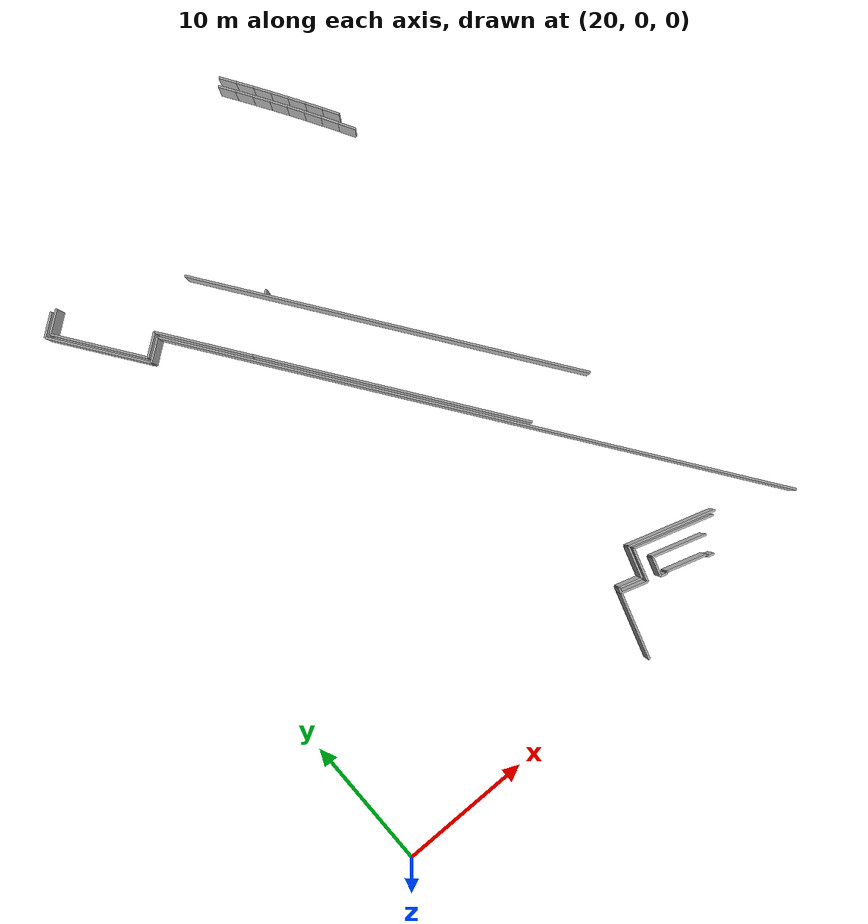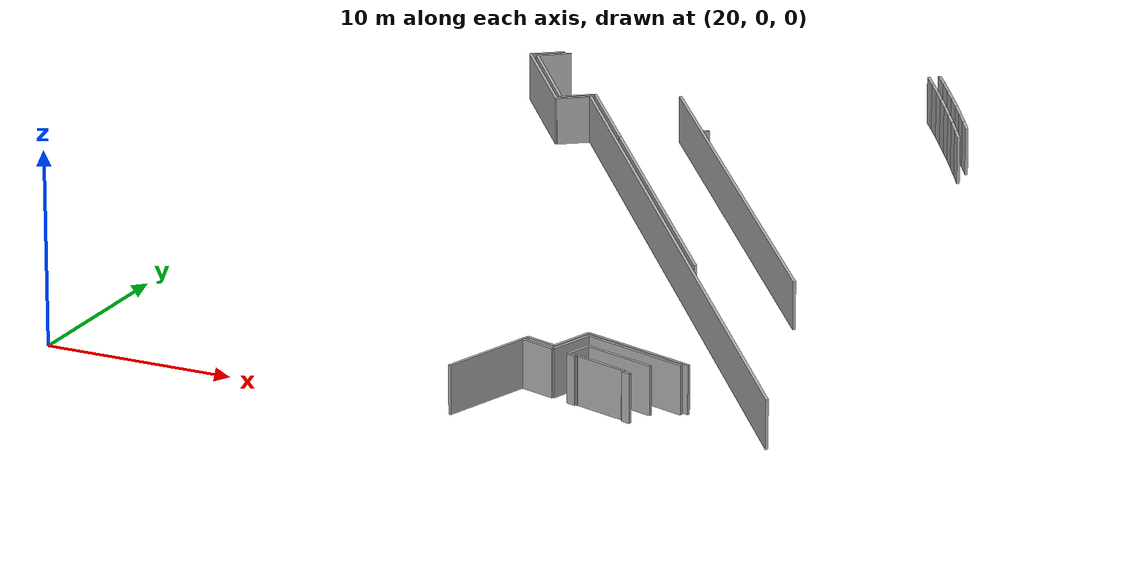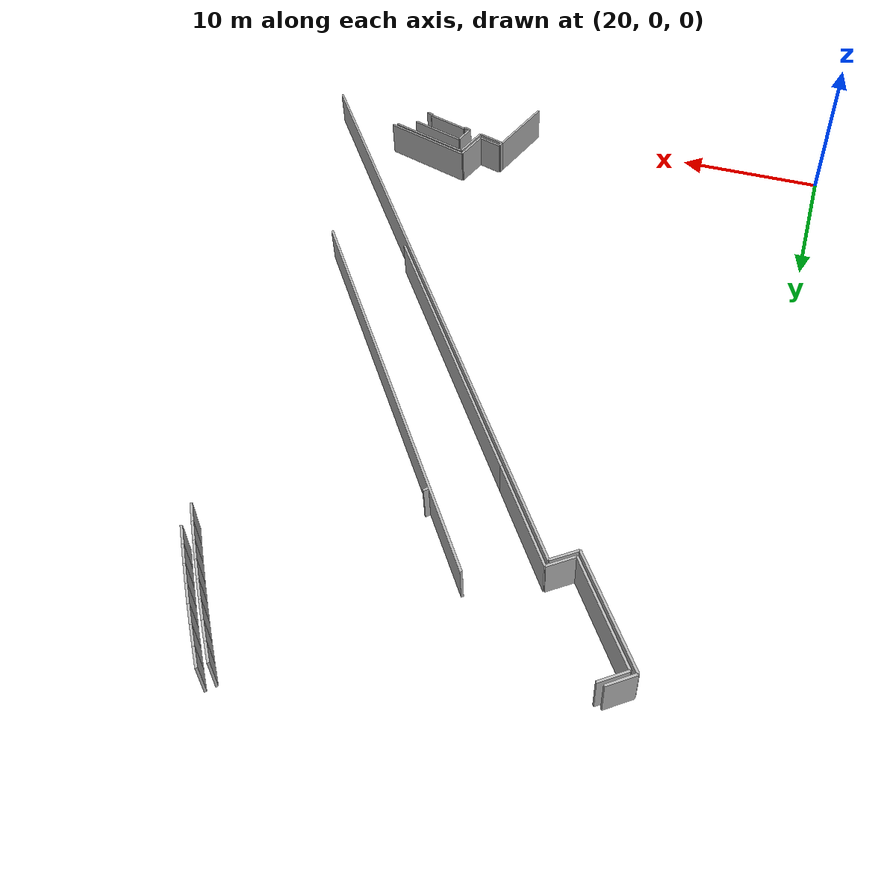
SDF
<?xml version="1.0" ?>
<sdf version="1.6">
  <model name="sps_0604">
    <pose frame="">0 0 0 0 -0 0</pose>
    <static>1</static>
    <self_collide>0</self_collide>
    <allow_auto_disable>0</allow_auto_disable>
    <link name="Wall131">
      <kinematic>0</kinematic>
      <gravity>1</gravity>
      <self_collide>0</self_collide>
      <collision name="collision">
        <geometry>
          <box>
            <size>0.381864 0.15 2.5</size>
          </box>
        </geometry>
        <pose frame="">0 0 0 0 -0 0</pose>
      </collision>
      <visual name="visual">
        <geometry>
          <box>
            <size>0.381864 0.15 2.5</size>
          </box>
        </geometry>
        <pose frame="">0 0 0 0 -0 0</pose>
        <cast_shadows>1</cast_shadows>
        <transparency>0.0</transparency>
      </visual>
      <pose frame="">43.2958 5.05962 1.25 0 -0 1.26542</pose>
    </link>
    <link name="Wall141">
      <kinematic>0</kinematic>
      <gravity>1</gravity>
      <self_collide>0</self_collide>
      <collision name="collision">
        <geometry>
          <box>
            <size>29.0168 0.15 2.5</size>
          </box>
        </geometry>
        <pose frame="">0 0 0 0 -0 0</pose>
      </collision>
      <visual name="visual">
        <geometry>
          <box>
            <size>29.0168 0.15 2.5</size>
          </box>
        </geometry>
        <pose frame="">0 0 0 0 -0 0</pose>
        <cast_shadows>1</cast_shadows>
        <transparency>0.0</transparency>
      </visual>
      <pose frame="">43.0265 29.6094 1.25 0 -0 2.2016</pose>
    </link>
    <link name="Wall519">
      <kinematic>0</kinematic>
      <gravity>1</gravity>
      <self_collide>0</self_collide>
      <collision name="collision">
        <geometry>
          <box>
            <size>0.350072 0.15 2.5</size>
          </box>
        </geometry>
        <pose frame="">0 0 0 0 -0 0</pose>
      </collision>
      <visual name="visual">
        <geometry>
          <box>
            <size>0.350072 0.15 2.5</size>
          </box>
        </geometry>
        <pose frame="">0 0 0 0 -0 0</pose>
        <cast_shadows>1</cast_shadows>
        <transparency>0.0</transparency>
      </visual>
      <pose frame="">38.0371 36.8069 1.25 0 0 -2.42158</pose>
    </link>
    <link name="Wall858">
      <kinematic>0</kinematic>
      <gravity>1</gravity>
      <self_collide>0</self_collide>
      <collision name="collision">
        <geometry>
          <box>
            <size>4.02983 0.15 2.5</size>
          </box>
        </geometry>
        <pose frame="">0 0 0 0 -0 0</pose>
      </collision>
      <visual name="visual">
        <geometry>
          <box>
            <size>4.02983 0.15 2.5</size>
          </box>
        </geometry>
        <pose frame="">0 0 0 0 -0 0</pose>
        <cast_shadows>1</cast_shadows>
        <transparency>0.0</transparency>
      </visual>
      <pose frame="">48.4295 4.75169 1.25 0 -0 2.83672</pose>
    </link>
    <link name="Wall1262">
      <kinematic>0</kinematic>
      <gravity>1</gravity>
      <self_collide>0</self_collide>
      <collision name="collision">
        <geometry>
          <box>
            <size>1.73522 0.15 2.5</size>
          </box>
        </geometry>
        <pose frame="">0 0 0 0 -0 0</pose>
      </collision>
      <visual name="visual">
        <geometry>
          <box>
            <size>1.73522 0.15 2.5</size>
          </box>
        </geometry>
        <pose frame="">0 0 0 0 -0 0</pose>
        <cast_shadows>1</cast_shadows>
        <transparency>0.0</transparency>
      </visual>
      <pose frame="">44.1808 4.98131 1.25 0 -0 2.83675</pose>
    </link>
    <link name="Wall1263">
      <kinematic>0</kinematic>
      <gravity>1</gravity>
      <self_collide>0</self_collide>
      <collision name="collision">
        <geometry>
          <box>
            <size>0.508074 0.15 2.5</size>
          </box>
        </geometry>
        <pose frame="">0 0 0 0 -0 0</pose>
      </collision>
      <visual name="visual">
        <geometry>
          <box>
            <size>0.508074 0.15 2.5</size>
          </box>
        </geometry>
        <pose frame="">0 0 0 0 -0 0</pose>
        <cast_shadows>1</cast_shadows>
        <transparency>0.0</transparency>
      </visual>
      <pose frame="">46.318 3.9084 1.25 0 0 -0.305035</pose>
    </link>
    <link name="Wall1264">
      <kinematic>0</kinematic>
      <gravity>1</gravity>
      <self_collide>0</self_collide>
      <collision name="collision">
        <geometry>
          <box>
            <size>0.123061 0.15 2.5</size>
          </box>
        </geometry>
        <pose frame="">0 0 0 0 -0 0</pose>
      </collision>
      <visual name="visual">
        <geometry>
          <box>
            <size>0.123061 0.15 2.5</size>
          </box>
        </geometry>
        <pose frame="">0 0 0 0 -0 0</pose>
        <cast_shadows>1</cast_shadows>
        <transparency>0.0</transparency>
      </visual>
      <pose frame="">46.5788 3.89079 1.25 0 0 -1.87608</pose>
    </link>
    <link name="Wall1267">
      <kinematic>0</kinematic>
      <gravity>1</gravity>
      <self_collide>0</self_collide>
      <collision name="collision">
        <geometry>
          <box>
            <size>0.123079 0.15 2.5</size>
          </box>
        </geometry>
        <pose frame="">0 0 0 0 -0 0</pose>
      </collision>
      <visual name="visual">
        <geometry>
          <box>
            <size>0.123079 0.15 2.5</size>
          </box>
        </geometry>
        <pose frame="">0 0 0 0 -0 0</pose>
        <cast_shadows>1</cast_shadows>
        <transparency>0.0</transparency>
      </visual>
      <pose frame="">49.4722 2.98039 1.25 0 -0 1.26504</pose>
    </link>
    <link name="Wall1268">
      <kinematic>0</kinematic>
      <gravity>1</gravity>
      <self_collide>0</self_collide>
      <collision name="collision">
        <geometry>
          <box>
            <size>3.03328 0.15 2.5</size>
          </box>
        </geometry>
        <pose frame="">0 0 0 0 -0 0</pose>
      </collision>
      <visual name="visual">
        <geometry>
          <box>
            <size>3.03328 0.15 2.5</size>
          </box>
        </geometry>
        <pose frame="">0 0 0 0 -0 0</pose>
        <cast_shadows>1</cast_shadows>
        <transparency>0.0</transparency>
      </visual>
      <pose frame="">48.044 3.49428 1.25 0 -0 2.83676</pose>
    </link>
    <link name="Wall1271">
      <kinematic>0</kinematic>
      <gravity>1</gravity>
      <self_collide>0</self_collide>
      <collision name="collision">
        <geometry>
          <box>
            <size>19.9923 0.15 2.5</size>
          </box>
        </geometry>
        <pose frame="">0 0 0 0 -0 0</pose>
      </collision>
      <visual name="visual">
        <geometry>
          <box>
            <size>19.9923 0.15 2.5</size>
          </box>
        </geometry>
        <pose frame="">0 0 0 0 -0 0</pose>
        <cast_shadows>1</cast_shadows>
        <transparency>0.0</transparency>
      </visual>
      <pose frame="">40.3652 25.9655 1.25 0 -0 2.20161</pose>
    </link>
    <link name="Wall1272">
      <kinematic>0</kinematic>
      <gravity>1</gravity>
      <self_collide>0</self_collide>
      <collision name="collision">
        <geometry>
          <box>
            <size>7.02578 0.15 2.5</size>
          </box>
        </geometry>
        <pose frame="">0 0 0 0 -0 0</pose>
      </collision>
      <visual name="visual">
        <geometry>
          <box>
            <size>7.02578 0.15 2.5</size>
          </box>
        </geometry>
        <pose frame="">0 0 0 0 -0 0</pose>
        <cast_shadows>1</cast_shadows>
        <transparency>0.0</transparency>
      </visual>
      <pose frame="">32.3975 36.8747 1.25 0 -0 2.20161</pose>
    </link>
    <link name="Wall1551">
      <kinematic>0</kinematic>
      <gravity>1</gravity>
      <self_collide>0</self_collide>
      <collision name="collision">
        <geometry>
          <box>
            <size>2.37616 0.15 2.5</size>
          </box>
        </geometry>
        <pose frame="">0 0 0 0 -0 0</pose>
      </collision>
      <visual name="visual">
        <geometry>
          <box>
            <size>2.37616 0.15 2.5</size>
          </box>
        </geometry>
        <pose frame="">0 0 0 0 -0 0</pose>
        <cast_shadows>1</cast_shadows>
        <transparency>0.0</transparency>
      </visual>
      <pose frame="">45.365 5.8542 1.25 0 0 -1.87564</pose>
    </link>
    <link name="Wall1552">
      <kinematic>0</kinematic>
      <gravity>1</gravity>
      <self_collide>0</self_collide>
      <collision name="collision">
        <geometry>
          <box>
            <size>1.43819 0.15 2.5</size>
          </box>
        </geometry>
        <pose frame="">0 0 0 0 -0 0</pose>
      </collision>
      <visual name="visual">
        <geometry>
          <box>
            <size>1.43819 0.15 2.5</size>
          </box>
        </geometry>
        <pose frame="">0 0 0 0 -0 0</pose>
        <cast_shadows>1</cast_shadows>
        <transparency>0.0</transparency>
      </visual>
      <pose frame="">46.2916 4.67061 1.25 0 0 -1.87576</pose>
    </link>
    <link name="Wall1553">
      <kinematic>0</kinematic>
      <gravity>1</gravity>
      <self_collide>0</self_collide>
      <collision name="collision">
        <geometry>
          <box>
            <size>0.488649 0.15 2.5</size>
          </box>
        </geometry>
        <pose frame="">0 0 0 0 -0 0</pose>
      </collision>
      <visual name="visual">
        <geometry>
          <box>
            <size>0.488649 0.15 2.5</size>
          </box>
        </geometry>
        <pose frame="">0 0 0 0 -0 0</pose>
        <cast_shadows>1</cast_shadows>
        <transparency>0.0</transparency>
      </visual>
      <pose frame="">49.6866 2.84819 1.25 0 0 -0.305634</pose>
    </link>
    <link name="Wall2608">
      <kinematic>0</kinematic>
      <gravity>1</gravity>
      <self_collide>0</self_collide>
      <collision name="collision">
        <geometry>
          <box>
            <size>6.50424 0.15 2.5</size>
          </box>
        </geometry>
        <pose frame="">0 0 0 0 -0 0</pose>
      </collision>
      <visual name="visual">
        <geometry>
          <box>
            <size>6.50424 0.15 2.5</size>
          </box>
        </geometry>
        <pose frame="">0 0 0 0 -0 0</pose>
        <cast_shadows>1</cast_shadows>
        <transparency>0.0</transparency>
      </visual>
      <pose frame="">48.8238 6.01118 1.25 0 -0 2.83668</pose>
    </link>
    <link name="Wall7039">
      <kinematic>0</kinematic>
      <gravity>1</gravity>
      <self_collide>0</self_collide>
      <collision name="collision">
        <geometry>
          <box>
            <size>1.25435 0.15 2.5</size>
          </box>
        </geometry>
        <pose frame="">0 0 0 0 -0 0</pose>
      </collision>
      <visual name="visual">
        <geometry>
          <box>
            <size>1.25435 0.15 2.5</size>
          </box>
        </geometry>
        <pose frame="">0 0 0 0 -0 0</pose>
        <cast_shadows>1</cast_shadows>
        <transparency>0.0</transparency>
      </visual>
      <pose frame="">49.6578 43.4734 1.25 0 -0 2.11278</pose>
    </link>
    <link name="Wall7040">
      <kinematic>0</kinematic>
      <gravity>1</gravity>
      <self_collide>0</self_collide>
      <collision name="collision">
        <geometry>
          <box>
            <size>1.25424 0.15 2.5</size>
          </box>
        </geometry>
        <pose frame="">0 0 0 0 -0 0</pose>
      </collision>
      <visual name="visual">
        <geometry>
          <box>
            <size>1.25424 0.15 2.5</size>
          </box>
        </geometry>
        <pose frame="">0 0 0 0 -0 0</pose>
        <cast_shadows>1</cast_shadows>
        <transparency>0.0</transparency>
      </visual>
      <pose frame="">49.0061 44.5451 1.25 0 -0 2.12154</pose>
    </link>
    <link name="Wall7041">
      <kinematic>0</kinematic>
      <gravity>1</gravity>
      <self_collide>0</self_collide>
      <collision name="collision">
        <geometry>
          <box>
            <size>1.2543 0.15 2.5</size>
          </box>
        </geometry>
        <pose frame="">0 0 0 0 -0 0</pose>
      </collision>
      <visual name="visual">
        <geometry>
          <box>
            <size>1.2543 0.15 2.5</size>
          </box>
        </geometry>
        <pose frame="">0 0 0 0 -0 0</pose>
        <cast_shadows>1</cast_shadows>
        <transparency>0.0</transparency>
      </visual>
      <pose frame="">48.345 45.611 1.25 0 -0 2.13039</pose>
    </link>
    <link name="Wall7042">
      <kinematic>0</kinematic>
      <gravity>1</gravity>
      <self_collide>0</self_collide>
      <collision name="collision">
        <geometry>
          <box>
            <size>1.25424 0.15 2.5</size>
          </box>
        </geometry>
        <pose frame="">0 0 0 0 -0 0</pose>
      </collision>
      <visual name="visual">
        <geometry>
          <box>
            <size>1.25424 0.15 2.5</size>
          </box>
        </geometry>
        <pose frame="">0 0 0 0 -0 0</pose>
        <cast_shadows>1</cast_shadows>
        <transparency>0.0</transparency>
      </visual>
      <pose frame="">47.6745 46.671 1.25 0 -0 2.13923</pose>
    </link>
    <link name="Wall7043">
      <kinematic>0</kinematic>
      <gravity>1</gravity>
      <self_collide>0</self_collide>
      <collision name="collision">
        <geometry>
          <box>
            <size>1.2544 0.15 2.5</size>
          </box>
        </geometry>
        <pose frame="">0 0 0 0 -0 0</pose>
      </collision>
      <visual name="visual">
        <geometry>
          <box>
            <size>1.2544 0.15 2.5</size>
          </box>
        </geometry>
        <pose frame="">0 0 0 0 -0 0</pose>
        <cast_shadows>1</cast_shadows>
        <transparency>0.0</transparency>
      </visual>
      <pose frame="">46.9947 47.7251 1.25 0 -0 2.14795</pose>
    </link>
    <link name="Wall7044">
      <kinematic>0</kinematic>
      <gravity>1</gravity>
      <self_collide>0</self_collide>
      <collision name="collision">
        <geometry>
          <box>
            <size>1.25419 0.15 2.5</size>
          </box>
        </geometry>
        <pose frame="">0 0 0 0 -0 0</pose>
      </collision>
      <visual name="visual">
        <geometry>
          <box>
            <size>1.25419 0.15 2.5</size>
          </box>
        </geometry>
        <pose frame="">0 0 0 0 -0 0</pose>
        <cast_shadows>1</cast_shadows>
        <transparency>0.0</transparency>
      </visual>
      <pose frame="">46.3057 48.7732 1.25 0 -0 2.15673</pose>
    </link>
    <link name="Wall7045">
      <kinematic>0</kinematic>
      <gravity>1</gravity>
      <self_collide>0</self_collide>
      <collision name="collision">
        <geometry>
          <box>
            <size>1.25423 0.15 2.5</size>
          </box>
        </geometry>
        <pose frame="">0 0 0 0 -0 0</pose>
      </collision>
      <visual name="visual">
        <geometry>
          <box>
            <size>1.25423 0.15 2.5</size>
          </box>
        </geometry>
        <pose frame="">0 0 0 0 -0 0</pose>
        <cast_shadows>1</cast_shadows>
        <transparency>0.0</transparency>
      </visual>
      <pose frame="">45.6075 49.8151 1.25 0 -0 2.16561</pose>
    </link>
    <link name="Wall7156">
      <kinematic>0</kinematic>
      <gravity>1</gravity>
      <self_collide>0</self_collide>
      <collision name="collision">
        <geometry>
          <box>
            <size>6.00019 0.15 2.5</size>
          </box>
        </geometry>
        <pose frame="">0 0 0 0 -0 0</pose>
      </collision>
      <visual name="visual">
        <geometry>
          <box>
            <size>6.00019 0.15 2.5</size>
          </box>
        </geometry>
        <pose frame="">0 0 0 0 -0 0</pose>
        <cast_shadows>1</cast_shadows>
        <transparency>0.0</transparency>
      </visual>
      <pose frame="">48.7584 5.76128 1.25 0 -0 2.8367</pose>
    </link>
    <link name="Wall7157">
      <kinematic>0</kinematic>
      <gravity>1</gravity>
      <self_collide>0</self_collide>
      <collision name="collision">
        <geometry>
          <box>
            <size>2.50003 0.15 2.5</size>
          </box>
        </geometry>
        <pose frame="">0 0 0 0 -0 0</pose>
      </collision>
      <visual name="visual">
        <geometry>
          <box>
            <size>2.50003 0.15 2.5</size>
          </box>
        </geometry>
        <pose frame="">0 0 0 0 -0 0</pose>
        <cast_shadows>1</cast_shadows>
        <transparency>0.0</transparency>
      </visual>
      <pose frame="">45.5214 5.4695 1.25 0 0 -1.87564</pose>
    </link>
    <link name="Wall7158">
      <kinematic>0</kinematic>
      <gravity>1</gravity>
      <self_collide>0</self_collide>
      <collision name="collision">
        <geometry>
          <box>
            <size>2.00008 0.15 2.5</size>
          </box>
        </geometry>
        <pose frame="">0 0 0 0 -0 0</pose>
      </collision>
      <visual name="visual">
        <geometry>
          <box>
            <size>2.00008 0.15 2.5</size>
          </box>
        </geometry>
        <pose frame="">0 0 0 0 -0 0</pose>
        <cast_shadows>1</cast_shadows>
        <transparency>0.0</transparency>
      </visual>
      <pose frame="">44.1923 4.57732 1.25 0 -0 2.8367</pose>
    </link>
    <link name="Wall7159">
      <kinematic>0</kinematic>
      <gravity>1</gravity>
      <self_collide>0</self_collide>
      <collision name="collision">
        <geometry>
          <box>
            <size>5.00002 0.15 2.5</size>
          </box>
        </geometry>
        <pose frame="">0 0 0 0 -0 0</pose>
      </collision>
      <visual name="visual">
        <geometry>
          <box>
            <size>5.00002 0.15 2.5</size>
          </box>
        </geometry>
        <pose frame="">0 0 0 0 -0 0</pose>
        <cast_shadows>1</cast_shadows>
        <transparency>0.0</transparency>
      </visual>
      <pose frame="">42.4879 2.49281 1.25 0 0 -1.87569</pose>
    </link>
    <link name="Wall16788">
      <kinematic>0</kinematic>
      <gravity>1</gravity>
      <self_collide>0</self_collide>
      <collision name="collision">
        <geometry>
          <box>
            <size>1.83276 0.15 2.5</size>
          </box>
        </geometry>
        <pose frame="">0 0 0 0 -0 0</pose>
      </collision>
      <visual name="visual">
        <geometry>
          <box>
            <size>1.83276 0.15 2.5</size>
          </box>
        </geometry>
        <pose frame="">0 0 0 0 -0 0</pose>
        <cast_shadows>1</cast_shadows>
        <transparency>0.0</transparency>
      </visual>
      <pose frame="">29.5857 39.1708 1.25 0 0 -2.51072</pose>
    </link>
    <link name="Wall16789">
      <kinematic>0</kinematic>
      <gravity>1</gravity>
      <self_collide>0</self_collide>
      <collision name="collision">
        <geometry>
          <box>
            <size>7.00003 0.15 2.5</size>
          </box>
        </geometry>
        <pose frame="">0 0 0 0 -0 0</pose>
      </collision>
      <visual name="visual">
        <geometry>
          <box>
            <size>7.00003 0.15 2.5</size>
          </box>
        </geometry>
        <pose frame="">0 0 0 0 -0 0</pose>
        <cast_shadows>1</cast_shadows>
        <transparency>0.0</transparency>
      </visual>
      <pose frame="">26.7815 41.4568 1.25 0 -0 2.20157</pose>
    </link>
    <link name="Wall16790">
      <kinematic>0</kinematic>
      <gravity>1</gravity>
      <self_collide>0</self_collide>
      <collision name="collision">
        <geometry>
          <box>
            <size>1.83232 0.15 2.5</size>
          </box>
        </geometry>
        <pose frame="">0 0 0 0 -0 0</pose>
      </collision>
      <visual name="visual">
        <geometry>
          <box>
            <size>1.83232 0.15 2.5</size>
          </box>
        </geometry>
        <pose frame="">0 0 0 0 -0 0</pose>
        <cast_shadows>1</cast_shadows>
        <transparency>0.0</transparency>
      </visual>
      <pose frame="">25.4571 44.8237 1.25 0 -0 0.630883</pose>
    </link>
    <link name="Wall19348">
      <kinematic>0</kinematic>
      <gravity>1</gravity>
      <self_collide>0</self_collide>
      <collision name="collision">
        <geometry>
          <box>
            <size>1.25225 0.15 2.5</size>
          </box>
        </geometry>
        <pose frame="">0 0 0 0 -0 0</pose>
      </collision>
      <visual name="visual">
        <geometry>
          <box>
            <size>1.25225 0.15 2.5</size>
          </box>
        </geometry>
        <pose frame="">0 0 0 0 -0 0</pose>
        <cast_shadows>1</cast_shadows>
        <transparency>0.0</transparency>
      </visual>
      <pose frame="">49.8497 41.9792 1.25 0 -0 2.10312</pose>
    </link>
    <link name="Wall19349">
      <kinematic>0</kinematic>
      <gravity>1</gravity>
      <self_collide>0</self_collide>
      <collision name="collision">
        <geometry>
          <box>
            <size>1.25211 0.15 2.5</size>
          </box>
        </geometry>
        <pose frame="">0 0 0 0 -0 0</pose>
      </collision>
      <visual name="visual">
        <geometry>
          <box>
            <size>1.25211 0.15 2.5</size>
          </box>
        </geometry>
        <pose frame="">0 0 0 0 -0 0</pose>
        <cast_shadows>1</cast_shadows>
        <transparency>0.0</transparency>
      </visual>
      <pose frame="">49.2094 43.0553 1.25 0 -0 2.11198</pose>
    </link>
    <link name="Wall19350">
      <kinematic>0</kinematic>
      <gravity>1</gravity>
      <self_collide>0</self_collide>
      <collision name="collision">
        <geometry>
          <box>
            <size>1.25223 0.15 2.5</size>
          </box>
        </geometry>
        <pose frame="">0 0 0 0 -0 0</pose>
      </collision>
      <visual name="visual">
        <geometry>
          <box>
            <size>1.25223 0.15 2.5</size>
          </box>
        </geometry>
        <pose frame="">0 0 0 0 -0 0</pose>
        <cast_shadows>1</cast_shadows>
        <transparency>0.0</transparency>
      </visual>
      <pose frame="">48.5597 44.1257 1.25 0 -0 2.1207</pose>
    </link>
    <link name="Wall19351">
      <kinematic>0</kinematic>
      <gravity>1</gravity>
      <self_collide>0</self_collide>
      <collision name="collision">
        <geometry>
          <box>
            <size>1.2522 0.15 2.5</size>
          </box>
        </geometry>
        <pose frame="">0 0 0 0 -0 0</pose>
      </collision>
      <visual name="visual">
        <geometry>
          <box>
            <size>1.2522 0.15 2.5</size>
          </box>
        </geometry>
        <pose frame="">0 0 0 0 -0 0</pose>
        <cast_shadows>1</cast_shadows>
        <transparency>0.0</transparency>
      </visual>
      <pose frame="">47.9005 45.1904 1.25 0 -0 2.12954</pose>
    </link>
    <link name="Wall19352">
      <kinematic>0</kinematic>
      <gravity>1</gravity>
      <self_collide>0</self_collide>
      <collision name="collision">
        <geometry>
          <box>
            <size>1.25224 0.15 2.5</size>
          </box>
        </geometry>
        <pose frame="">0 0 0 0 -0 0</pose>
      </collision>
      <visual name="visual">
        <geometry>
          <box>
            <size>1.25224 0.15 2.5</size>
          </box>
        </geometry>
        <pose frame="">0 0 0 0 -0 0</pose>
        <cast_shadows>1</cast_shadows>
        <transparency>0.0</transparency>
      </visual>
      <pose frame="">47.2321 46.2493 1.25 0 -0 2.13817</pose>
    </link>
    <link name="Wall19353">
      <kinematic>0</kinematic>
      <gravity>1</gravity>
      <self_collide>0</self_collide>
      <collision name="collision">
        <geometry>
          <box>
            <size>1.25224 0.15 2.5</size>
          </box>
        </geometry>
        <pose frame="">0 0 0 0 -0 0</pose>
      </collision>
      <visual name="visual">
        <geometry>
          <box>
            <size>1.25224 0.15 2.5</size>
          </box>
        </geometry>
        <pose frame="">0 0 0 0 -0 0</pose>
        <cast_shadows>1</cast_shadows>
        <transparency>0.0</transparency>
      </visual>
      <pose frame="">46.5545 47.3023 1.25 0 -0 2.14709</pose>
    </link>
    <link name="Wall19354">
      <kinematic>0</kinematic>
      <gravity>1</gravity>
      <self_collide>0</self_collide>
      <collision name="collision">
        <geometry>
          <box>
            <size>1.25218 0.15 2.5</size>
          </box>
        </geometry>
        <pose frame="">0 0 0 0 -0 0</pose>
      </collision>
      <visual name="visual">
        <geometry>
          <box>
            <size>1.25218 0.15 2.5</size>
          </box>
        </geometry>
        <pose frame="">0 0 0 0 -0 0</pose>
        <cast_shadows>1</cast_shadows>
        <transparency>0.0</transparency>
      </visual>
      <pose frame="">45.8675 48.3492 1.25 0 -0 2.15599</pose>
    </link>
    <link name="Wall19355">
      <kinematic>0</kinematic>
      <gravity>1</gravity>
      <self_collide>0</self_collide>
      <collision name="collision">
        <geometry>
          <box>
            <size>1.2522 0.15 2.5</size>
          </box>
        </geometry>
        <pose frame="">0 0 0 0 -0 0</pose>
      </collision>
      <visual name="visual">
        <geometry>
          <box>
            <size>1.2522 0.15 2.5</size>
          </box>
        </geometry>
        <pose frame="">0 0 0 0 -0 0</pose>
        <cast_shadows>1</cast_shadows>
        <transparency>0.0</transparency>
      </visual>
      <pose frame="">45.1711 49.3899 1.25 0 -0 2.16495</pose>
    </link>
    <link name="Wall25195">
      <kinematic>0</kinematic>
      <gravity>1</gravity>
      <self_collide>0</self_collide>
      <collision name="collision">
        <geometry>
          <box>
            <size>1.83279 0.15 2.5</size>
          </box>
        </geometry>
        <pose frame="">0 0 0 0 -0 0</pose>
      </collision>
      <visual name="visual">
        <geometry>
          <box>
            <size>1.83279 0.15 2.5</size>
          </box>
        </geometry>
        <pose frame="">0 0 0 0 -0 0</pose>
        <cast_shadows>1</cast_shadows>
        <transparency>0.0</transparency>
      </visual>
      <pose frame="">25.0362 44.8904 1.25 0 0 -2.50834</pose>
    </link>
    <link name="Wall25196">
      <kinematic>0</kinematic>
      <gravity>1</gravity>
      <self_collide>0</self_collide>
      <collision name="collision">
        <geometry>
          <box>
            <size>7.59996 0.15 2.5</size>
          </box>
        </geometry>
        <pose frame="">0 0 0 0 -0 0</pose>
      </collision>
      <visual name="visual">
        <geometry>
          <box>
            <size>7.59996 0.15 2.5</size>
          </box>
        </geometry>
        <pose frame="">0 0 0 0 -0 0</pose>
        <cast_shadows>1</cast_shadows>
        <transparency>0.0</transparency>
      </visual>
      <pose frame="">26.5464 41.2851 1.25 0 0 -0.937453</pose>
    </link>
    <link name="Wall25197">
      <kinematic>0</kinematic>
      <gravity>1</gravity>
      <self_collide>0</self_collide>
      <collision name="collision">
        <geometry>
          <box>
            <size>1.81378 0.15 2.5</size>
          </box>
        </geometry>
        <pose frame="">0 0 0 0 -0 0</pose>
      </collision>
      <visual name="visual">
        <geometry>
          <box>
            <size>1.81378 0.15 2.5</size>
          </box>
        </geometry>
        <pose frame="">0 0 0 0 -0 0</pose>
        <cast_shadows>1</cast_shadows>
        <transparency>0.0</transparency>
      </visual>
      <pose frame="">29.5265 38.7587 1.25 0 -0 0.633143</pose>
    </link>
    <link name="Wall27833">
      <kinematic>0</kinematic>
      <gravity>1</gravity>
      <self_collide>0</self_collide>
      <collision name="collision">
        <geometry>
          <box>
            <size>45.6279 0.15 2.5</size>
          </box>
        </geometry>
        <pose frame="">0 0 0 0 -0 0</pose>
      </collision>
      <visual name="visual">
        <geometry>
          <box>
            <size>45.6279 0.15 2.5</size>
          </box>
        </geometry>
        <pose frame="">0 0 0 0 -0 0</pose>
        <cast_shadows>1</cast_shadows>
        <transparency>0.0</transparency>
      </visual>
      <pose frame="">43.7135 20.872 1.25 0 0 -0.939967</pose>
    </link>
  </model>
</sdf>
